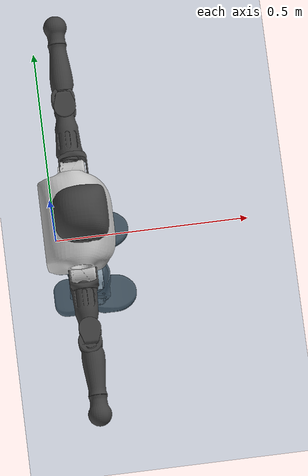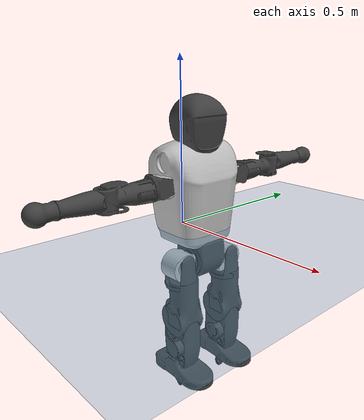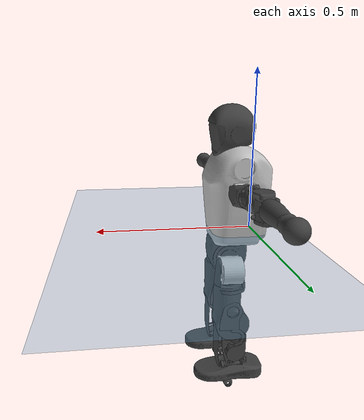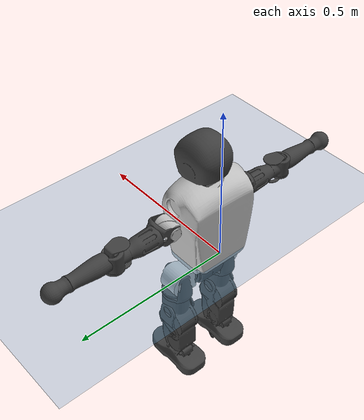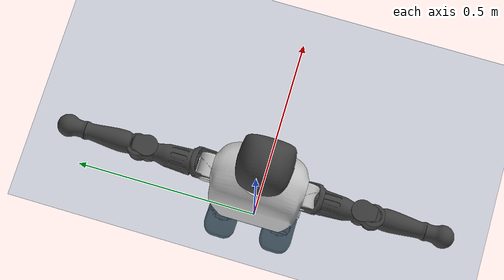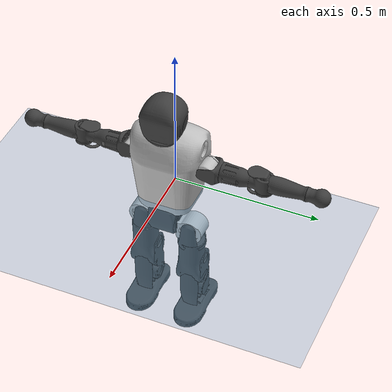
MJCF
<mujoco model="T1">
  <compiler angle="radian" assetdir="assets" balanceinertia="true" inertiafromgeom="false"/>

  <option timestep="0.005" density="1.2" viscosity="2e-05"/>

  <size nkey="1"/>

  <visual>
    <quality shadowsize="8192"/>
    <map shadowclip="0.5"/>
  </visual>

  <default>
    <default class="/">
      <joint armature="0.01" damping="0.01" frictionloss="0.1"/>
      <geom contype="0" conaffinity="0" group="1" solref="-1000 -80"/>
      <site size="0.01 0.005 0.005" group="5"/>
      <general forcelimited="true" biastype="affine" gainprm="25" biasprm="0 -25 -0.6"/>
      <default class="t1">
        <geom rgba="0.25 0.25 0.25 1"/>
        <default class="visual">
          <geom type="mesh" group="2"/>
        </default>
        <default class="collision">
          <geom group="3"/>
        </default>
        <default class="foot">
          <geom size="0.1115 0.05 0.015" type="box" condim="6" group="4" priority="1" solimp="0.015 1 0.015"/>
        </default>
        <default class="reward_collision_sphere">
          <geom group="5" rgba="1 0 0 1"/>
        </default>
      </default>
    </default>
  </default>

  <asset>
    <texture type="skybox" colorspace="auto" name="//unnamed_texture_0" builtin="gradient" rgb1="0.95 0.95 0.95" rgb2="0.95 0.95 0.95" width="100" height="600"/>
    <texture type="2d" colorspace="auto" name="texplane" builtin="checker" rgb1="0.345 0.575 0.748" rgb2="0.345 0.575 0.748" markrgb="1 1 1" width="512" height="512"/>
    <material name="MatPlane" class="/" texture="texplane" texuniform="true" texrepeat="2 2" specular="0.9"/>
    <mesh name="Trunk" class="/" file="Trunk.stl"/>
    <mesh name="H1" class="/" file="H1.stl"/>
    <mesh name="H2" class="/" file="H2.stl"/>
    <mesh name="AL1" class="/" file="AL1.stl"/>
    <mesh name="AL2" class="/" file="AL2.stl"/>
    <mesh name="AL3" class="/" file="AL3.stl"/>
    <mesh name="left_hand_link" class="/" file="left_hand_link.stl"/>
    <mesh name="AR1" class="/" file="AR1.stl"/>
    <mesh name="AR2" class="/" file="AR2.stl"/>
    <mesh name="AR3" class="/" file="AR3.stl"/>
    <mesh name="right_hand_link" class="/" file="right_hand_link.stl"/>
    <mesh name="Waist" class="/" file="Waist.stl"/>
    <mesh name="Hip_Pitch_Left" class="/" file="Hip_Pitch_Left.stl"/>
    <mesh name="Hip_Roll_Left" class="/" file="Hip_Roll_Left.stl"/>
    <mesh name="Hip_Yaw_Left" class="/" file="Hip_Yaw_Left.stl"/>
    <mesh name="Shank_Left" class="/" file="Shank_Left.stl"/>
    <mesh name="Ankle_Cross_Left" class="/" file="Ankle_Cross_Left.stl"/>
    <mesh name="left_foot_link" class="/" file="left_foot_link.stl"/>
    <mesh name="Hip_Pitch_Right" class="/" file="Hip_Pitch_Right.stl"/>
    <mesh name="Hip_Roll_Right" class="/" file="Hip_Roll_Right.stl"/>
    <mesh name="Hip_Yaw_Right" class="/" file="Hip_Yaw_Right.stl"/>
    <mesh name="Shank_Right" class="/" file="Shank_Right.stl"/>
    <mesh name="Ankle_Cross_Right" class="/" file="Ankle_Cross_Right.stl"/>
    <mesh name="right_foot_link" class="/" file="right_foot_link.stl"/>
  </asset>

  <worldbody>
    <geom name="floor" class="/" size="100 100 0.125" type="plane" group="0" material="MatPlane"/>
    <light name="toplight_shadow" class="/" pos="0 0 5" dir="0.0990148 0.0990148 -0.990148" type="directional" ambient="0.04 0.04 0.04" diffuse="0.55 0.55 0.55" specular="0.12 0.12 0.12"/>
    <light name="toplight_fill" class="/" pos="0 0 5" dir="0.0990148 0.0990148 -0.990148" type="directional" castshadow="false" ambient="0.04 0.04 0.04" diffuse="0.3 0.3 0.3" specular="0.08 0.08 0.08"/>
    <body name="trunk" childclass="t1" pos="0.000573317 0.00605124 -0.00442494" quat="0.999995 0.00279635 -0.00124426 -0.00104959">
      <inertial pos="0.0582217 -8.22913e-05 0.072008" quat="0.999953 -0.00096387 -0.00966075 0.000618405" mass="7.48388" diaginertia="0.127151 0.0259115 0.00696903"/>
      <joint name="//unnamed_joint_0" type="free" armature="0" damping="0" frictionloss="0"/>
      <geom name="//unnamed_geom_1" class="visual" rgba="0.76 0.76 0.76 1" mesh="Trunk"/>
      <geom name="//unnamed_geom_2" class="collision" size="0.064909 0.0865453 0.129818" pos="0.0656348 0 0.0825685" type="box"/>
      <geom name="//unnamed_geom_3" class="reward_collision_sphere" size="0.0995271" pos="0.0656348 0 0.0688071"/>
      <geom name="//unnamed_geom_4" class="reward_collision_sphere" size="0.0129818" pos="0.0656348 0.069222 0"/>
      <geom name="//unnamed_geom_5" class="reward_collision_sphere" size="0.0129818" pos="0.0656348 -0.069222 0"/>
      <geom name="//unnamed_geom_6" class="reward_collision_sphere" size="0.0129818" pos="0.0656348 0.0871382 0.123853"/>
      <geom name="//unnamed_geom_7" class="reward_collision_sphere" size="0.0129818" pos="0.0656348 -0.0871382 0.123853"/>
      <site name="imu" pos="-0.0221301 -0.00340681 0.00427728" size="0.00865453"/>
      <camera name="track" pos="0 -1.62875 0" quat="0.707107 0.707107 0 0" mode="trackcom"/>
      <camera name="ego_camera" pos="0.133457 0 0.28899" quat="-0.5 -0.5 0.5 0.5"/>
      <body name="H1" pos="0.0618193 -0.00659535 0.171333" quat="1 -7.93439e-05 0.000224551 -6.46306e-05">
        <inertial pos="0.00431705 -0.00219536 0.0349821" quat="0.771894 -0.056271 0.00113229 0.633256" mass="0.289512" diaginertia="0.000398802 7.86219e-05 2.35872e-05"/>
        <joint name="AAHead_yaw" pos="0 0 0" axis="-0.00436408 -0.00534027 0.999976" range="-1.54892 1.67038" armature="0.0110253" damping="0" frictionloss="0.047203"/>
        <geom name="//unnamed_geom_8" class="visual" mesh="H1"/>
        <body name="H2" pos="-0.0032513 -0.000210986 0.0393226" quat="1 4.92572e-05 -2.30142e-05 4.15746e-05">
          <inertial pos="0.00882766 -0.00184459 0.0689594" quat="0.988587 0.104807 -0.0718712 -0.080901" mass="0.427767" diaginertia="0.00349531 0.000734343 0.000259548"/>
          <joint name="Head_pitch" pos="0 0 0" axis="0.000942335 -0.999951 -0.0098637" range="-1.26942 0.394448" armature="0.0121739" damping="0" frictionloss="0.0829886"/>
          <geom name="//unnamed_geom_9" class="visual" mesh="H2"/>
          <geom name="//unnamed_geom_10" class="collision" size="0.0692362" pos="0.0109391 0 0.0756878"/>
          <geom name="//unnamed_geom_11" class="reward_collision_sphere" size="0.0778908" pos="0.0218783 0 0.0688071"/>
        </body>
      </body>
      <body name="AL1" pos="0.0635712 0.0894069 0.149603" quat="1 -3.7516e-05 0.000454292 -4.8043e-05">
        <inertial pos="0.00116653 0.0368147 5.46353e-05" quat="0.519384 0.512298 -0.50633 0.459806" mass="0.329467" diaginertia="0.00213123 0.000443268 4.098e-05"/>
        <joint name="Left_Shoulder_Pitch" pos="0 0 0" axis="-0.0113701 0.999924 -0.00485876" range="-3.27946 1.20332" armature="0.00795398" damping="0.00465388" frictionloss="0.0783923"/>
        <geom name="//unnamed_geom_12" class="visual" rgba="0.76 0.76 0.76 1" mesh="AL1"/>
        <body name="AL2" pos="0.00358826 0.0403355 0.00149415" quat="1 0.000498841 -0.000265025 0.000218593">
          <inertial pos="0.00707941 0.0332227 -0.00135113" quat="0.488002 0.513892 -0.483316 0.513979" mass="0.105283" diaginertia="0.000618015 0.000124882 2.63905e-05"/>
          <joint name="Left_Shoulder_Roll" pos="0 0 0" axis="-0.999964 0.000898448 0.00842405" range="-1.55316 1.68331" armature="0.00837094" damping="0" frictionloss="0.0775888"/>
          <geom name="//unnamed_geom_13" class="visual" mesh="AL2"/>
          <body name="AL3" pos="-0.00541029 0.0516772 -0.00202289" quat="0.999997 0.000251758 0.00227926 -0.000221308">
            <inertial pos="0.00770316 0.0716868 0.000163696" quat="0.70447 0.709682 0.00801829 -0.00293406" mass="0.632419" diaginertia="0.0198821 0.00503304 9.91711e-05"/>
            <joint name="Left_Elbow_Pitch" pos="0 0 0" axis="0.00248496 -0.999958 0.00879016" range="-2.29489 2.27872" armature="0.00983536" damping="0" frictionloss="0.0793791"/>
            <geom name="//unnamed_geom_14" class="visual" mesh="AL3"/>
            <geom name="//unnamed_geom_15" class="collision" size="0.0259636 0.064909" pos="0 0.0407188 0" quat="0.707105 0.707108 0 0" type="cylinder"/>
            <geom name="//unnamed_geom_16" class="reward_collision_sphere" size="0.0311563"/>
            <body name="left_hand_link" pos="0.00214795 0.121057 0.00888982" quat="0.999994 -0.00158208 0.00236815 0.00183501">
              <inertial pos="-0.0014502 0.0928634 -0.00325976" quat="0.705989 0.70814 -0.00947193 -0.00526798" mass="0.227831" diaginertia="0.0129574 0.00307783 3.89014e-05"/>
              <joint name="Left_Elbow_Yaw" pos="0 0 0" axis="0.00830875 0.00688676 0.999942" range="-2.4813 0.00835611" armature="0.00773897" damping="0.0177305" frictionloss="0.0822856"/>
              <geom name="//unnamed_geom_17" class="visual" mesh="left_hand_link"/>
              <geom name="//unnamed_geom_18" class="collision" size="0.0259636 0.0757271" pos="0 0.105869 0" quat="0.707105 0.707108 0 0" type="cylinder"/>
              <geom name="//unnamed_geom_19" class="reward_collision_sphere" size="0.0432727"/>
              <geom name="//unnamed_geom_20" class="reward_collision_sphere" size="0.0302909" pos="0 0.0895814 0"/>
              <geom name="//unnamed_geom_21" class="reward_collision_sphere" size="0.0302909" pos="0 0.175091 0"/>
            </body>
          </body>
        </body>
      </body>
      <body name="AR1" pos="0.0605487 -0.0785369 0.153709" quat="0.999999 -0.000524932 0.000322356 -0.000975165">
        <inertial pos="0.00115351 -0.0307952 -0.00764645" quat="0.511353 0.49506 -0.503973 0.489331" mass="0.353368" diaginertia="0.00219621 0.000521779 4.66698e-05"/>
        <joint name="Right_Shoulder_Pitch" pos="0 0 0" axis="0.0329068 -0.999355 -0.0143941" range="-1.32261 3.26159" armature="0.00860899" damping="0.00919882" frictionloss="0.0654108"/>
        <geom name="//unnamed_geom_22" class="visual" rgba="0.76 0.76 0.76 1" mesh="AR1"/>
        <body name="AR2" pos="-0.00108394 -0.0359168 0.00290706" quat="0.999999 -0.000423921 0.00014417 0.00124427">
          <inertial pos="0.00685547 -0.0297496 0.00296139" quat="0.512188 0.491841 -0.515227 0.479893" mass="0.0936021" diaginertia="0.000558876 0.000106744 2.68523e-05"/>
          <joint name="Right_Shoulder_Roll" pos="0 0 0" axis="-0.999969 0.00768355 0.00175926" range="-1.71526 1.53234" armature="0.0114927" damping="0.00341047" frictionloss="0.0780761"/>
          <geom name="//unnamed_geom_23" class="visual" mesh="AR2"/>
          <body name="AR3" pos="-0.00195614 -0.0431463 -0.00673672" quat="0.999996 0.00221524 -0.00106367 -0.000982883">
            <inertial pos="-0.00894169 -0.0672507 -0.00631098" quat="0.708778 0.705427 -0.00262076 -8.66102e-05" mass="0.694776" diaginertia="0.02307 0.00476529 0.000100762"/>
            <joint name="Right_Elbow_Pitch" pos="0 0 0" axis="0.000240804 1 -0.000192473" stiffness="0.00416551" range="-2.30132 2.24337" armature="0.00858065" damping="0" frictionloss="0.0472842"/>
            <geom name="//unnamed_geom_24" class="visual" mesh="AR3"/>
            <geom name="//unnamed_geom_25" class="collision" size="0.0259636 0.064909" pos="0 -0.0407188 0" quat="0.707105 0.707108 0 0" type="cylinder"/>
            <geom name="//unnamed_geom_26" class="reward_collision_sphere" size="0.0311563"/>
            <body name="right_hand_link" pos="0.00296261 -0.115466 0.00247863" quat="1 -0.000305034 0.000105327 -2.77569e-05">
              <inertial pos="-0.000352259 -0.0884112 -0.000502924" quat="0.707732 0.706438 0.0068996 0.00370034" mass="0.202924" diaginertia="0.0115291 0.00262785 3.02958e-05"/>
              <joint name="Right_Elbow_Yaw" pos="0 0 0" axis="0.0230827 0.0350521 0.999119" range="-0.00948529 2.43149" armature="0.00922942" damping="0" frictionloss="0.0763036"/>
              <geom name="//unnamed_geom_27" class="visual" mesh="right_hand_link"/>
              <geom name="//unnamed_geom_28" class="collision" size="0.0259636 0.0757271" pos="0 -0.105869 0" quat="0.707105 0.707108 0 0" type="cylinder"/>
              <geom name="//unnamed_geom_29" class="reward_collision_sphere" size="0.0432727"/>
              <geom name="//unnamed_geom_30" class="reward_collision_sphere" size="0.0302909" pos="0 -0.0895814 0"/>
              <geom name="//unnamed_geom_31" class="reward_collision_sphere" size="0.0302909" pos="0 -0.175091 0"/>
            </body>
          </body>
        </body>
      </body>
      <body name="Waist" pos="0.0773869 0.00063588 -0.0833492" quat="0.999992 0.00155616 0.00128506 -0.003502">
        <inertial pos="0.00983603 -0.00444704 0.0091343" quat="0.976535 0.00746747 -0.214379 0.0191278" mass="1.80169" diaginertia="0.00844431 0.00187428 0.000716243"/>
        <joint name="Waist" pos="0 0 0" axis="-0.000720103 -0.0147882 0.99989" range="-1.5789 1.59283" armature="0.00858653" damping="0.014027" frictionloss="0.0893637"/>
        <geom name="//unnamed_geom_32" class="visual" mesh="Waist"/>
        <body name="Hip_Pitch_Left" pos="0.0039721 0.0907663 -0.00562525" quat="1 -0.000336863 -0.000217978 0.000150968">
          <inertial pos="-0.00632619 -0.00370439 -0.0134544" quat="0.9698 0.241869 0.0173652 0.0261876" mass="0.657358" diaginertia="0.00296407 0.000474578 0.000185544"/>
          <joint name="Left_Hip_Pitch" pos="0 0 0" axis="-0.0163262 0.99968 -0.0193126" range="-1.81694 1.53941" armature="0.00763928" damping="0.00440568" frictionloss="0.0951948"/>
          <geom name="//unnamed_geom_33" class="visual" rgba="0.76 0.76 0.76 1" mesh="Hip_Pitch_Left"/>
          <body name="Hip_Roll_Left" pos="0.00576803 0.00101373 -0.00449165" quat="1 6.42366e-05 -9.09106e-05 9.92606e-05">
            <inertial pos="0.00130059 0.00840783 -0.036211" quat="0.707808 -0.00500048 -0.00478705 0.706371" mass="0.261277" diaginertia="0.00310291 0.000628846 7.42898e-05"/>
            <joint name="Left_Hip_Roll" pos="0 0 0" axis="-0.999979 0.00279106 0.00589935" stiffness="0.00244891" range="-1.59901 0.161759" armature="0.00914055" damping="0.0487767" frictionloss="0.066022"/>
            <geom name="//unnamed_geom_34" class="visual" mesh="Hip_Roll_Left"/>
            <geom name="//unnamed_geom_35" class="reward_collision_sphere" size="0.0475999"/>
            <body name="Hip_Yaw_Left" pos="0.00358657 0.0012877 -0.0565228" quat="0.999999 0.00058283 0.00100274 -0.000586158">
              <inertial pos="-0.00633291 6.38344e-06 -0.0573524" quat="0.696708 -0.0344632 -0.0311332 0.71585" mass="1.44848" diaginertia="0.0427306 0.010123 0.000441833"/>
              <joint name="Left_Hip_Yaw" pos="0 0 0" axis="0.00652977 0.00645112 -0.999958" stiffness="0.0306437" range="-0.836271 0.967637" armature="0.00844037" damping="0" frictionloss="0.0881334"/>
              <geom name="//unnamed_geom_36" class="visual" mesh="Hip_Yaw_Left"/>
              <geom name="//unnamed_geom_37" class="collision" size="0.0432727 0.0692362" type="cylinder"/>
              <body name="Shank_Left" pos="-0.0102329 0.00181695 -0.0816279" quat="1 -0.000510245 0.000365806 2.89868e-05">
                <inertial pos="-0.00165426 0.00280364 -0.0846011" quat="0.997305 0.00874202 -0.0151255 0.0712556" mass="1.12205" diaginertia="0.052776 0.0138833 0.000310054"/>
                <joint name="Left_Knee_Pitch" pos="0 0 0" axis="-0.00287666 0.999983 0.00513776" range="0.00544222 2.40424" armature="0.00681393" damping="0.0244964" frictionloss="0.0777969"/>
                <geom name="//unnamed_geom_38" class="visual" mesh="Shank_Left"/>
                <geom name="//unnamed_geom_39" class="collision" size="0.0432727 0.064909" pos="0 0 -0.0825685" type="cylinder"/>
                <geom name="//unnamed_geom_40" class="reward_collision_sphere" size="0.0562545"/>
                <body name="Ankle_Cross_Left" pos="-0.00672783 0.000595926 -0.201678" quat="0.999999 -0.00090318 0.000239142 0.000586426">
                  <inertial pos="0.00514992 0.00212981 -0.00790291" quat="0.437898 0.557563 0.547702 0.444288" mass="0.0488857" diaginertia="4.72174e-05 9.29334e-06 1.74783e-06"/>
                  <joint name="Left_Ankle_Pitch" pos="0 0 0" axis="-0.00162321 0.999995 0.00268101" stiffness="0.0240764" range="-0.860411 0.346446" armature="0.00489325" damping="0" frictionloss="0.0951276"/>
                  <geom name="//unnamed_geom_41" class="visual" mesh="Ankle_Cross_Left"/>
                  <body name="left_foot_link" pos="-0.000454394 0.00380989 -0.011808" quat="0.999989 -0.00216096 0.0031278 -0.00258951">
                    <inertial pos="0.00443421 0.00234558 -0.00836093" quat="-0.00995968 0.613168 0.0316553 0.789256" mass="0.407001" diaginertia="0.00387764 0.000827434 0.000304333"/>
                    <joint name="Left_Ankle_Roll" pos="0 0 0" axis="-0.999042 -0.030858 0.0310391" range="-0.441926 0.372716" armature="0.00867121" damping="0.0302387" frictionloss="0.0814531"/>
                    <geom name="//unnamed_geom_42" class="visual" mesh="left_foot_link"/>
                    <geom name="left_foot" class="foot" size="0.0901229 0.0563671 0.011315" pos="0.0109391 0 -0.0103211"/>
                    <geom name="//unnamed_geom_44" class="reward_collision_sphere" size="0.0450036" pos="0.0109391 0 -0.0103211"/>
                    <geom name="//unnamed_geom_45" class="reward_collision_sphere" size="0.0259636" pos="0.103922 -0.0187306 -0.0103211"/>
                    <geom name="//unnamed_geom_46" class="reward_collision_sphere" size="0.0259636" pos="-0.0765739 -0.0187306 -0.0103211"/>
                    <site name="left_foot" class="foot" pos="0.0109391 0 -0.0103211" size="0.00865453"/>
                  </body>
                </body>
              </body>
            </body>
          </body>
        </body>
        <body name="Hip_Pitch_Right" pos="-0.00223455 -0.0836992 0.00837123" quat="1 -0.00027191 0.000168123 0.000651176">
          <inertial pos="0.00832994 0.0126011 -0.0122564" quat="0.974144 -0.225427 0.0139969 -0.00558562" mass="0.664012" diaginertia="0.00268911 0.000492106 0.00019685"/>
          <joint name="Right_Hip_Pitch" pos="0 0 0" axis="0.000423305 -0.999999 -0.00162455" range="-1.59046 1.86529" armature="0.00883714" damping="0.0431669" frictionloss="0.0836189"/>
          <geom name="//unnamed_geom_47" class="visual" rgba="0.76 0.76 0.76 1" mesh="Hip_Pitch_Right"/>
          <body name="Hip_Roll_Right" pos="0.00289991 0.00352195 -0.00549178" quat="0.999999 0.000768956 -0.000620594 0.000930766">
            <inertial pos="0.00526792 -0.000317376 -0.0408185" quat="0.719298 -0.00721346 -0.0296355 0.694031" mass="0.241033" diaginertia="0.00240556 0.000526891 7.56389e-05"/>
            <joint name="Right_Hip_Roll" pos="0 0 0" axis="-0.999999 -0.000160203 0.00116989" range="-0.237119 1.59762" armature="0.00807445" damping="0.0107835" frictionloss="0.0700587"/>
            <geom name="//unnamed_geom_48" class="visual" mesh="Hip_Roll_Right"/>
            <geom name="//unnamed_geom_49" class="reward_collision_sphere" size="0.0475999"/>
            <body name="Hip_Yaw_Right" pos="0.00808029 0.00219265 -0.0569638" quat="0.999999 0.000233743 0.00113841 0.00033787">
              <inertial pos="-0.00887966 -0.000473673 -0.0643368" quat="0.718688 -0.0260145 -0.0317633 0.694119" mass="1.33422" diaginertia="0.0352292 0.00873173 0.000346898"/>
              <joint name="Right_Hip_Yaw" pos="0 0 0" axis="0.00376153 0.00264786 -0.999989" range="-1.03712 0.972351" armature="0.00942658" damping="0" frictionloss="0.0866177"/>
              <geom name="//unnamed_geom_50" class="visual" mesh="Hip_Yaw_Right"/>
              <geom name="//unnamed_geom_51" class="collision" size="0.0432727 0.0692362" type="cylinder"/>
              <body name="Shank_Right" pos="-0.00959418 0.00226788 -0.0885216" quat="1 3.19292e-05 1.27285e-05 -5.16368e-05">
                <inertial pos="-0.00636772 0.00559247 -0.084745" quat="0.999299 0.0174324 -0.0277759 -0.0180553" mass="1.04664" diaginertia="0.0539905 0.0122063 0.000320324"/>
                <joint name="Right_Knee_Pitch" pos="0 0 0" axis="-0.011522 -0.999931 -0.0023811" stiffness="0.00342744" range="-2.20123 0.0182792" armature="0.00833535" damping="0.00462755" frictionloss="0.0780091"/>
                <geom name="//unnamed_geom_52" class="visual" mesh="Shank_Right"/>
                <geom name="//unnamed_geom_53" class="collision" size="0.0432727 0.064909" pos="0 0 -0.0825685" type="cylinder"/>
                <geom name="//unnamed_geom_54" class="reward_collision_sphere" size="0.0562545"/>
                <body name="Ankle_Cross_Right" pos="0.00342803 0.000857238 -0.192727" quat="1 5.03064e-05 -0.000105013 2.82474e-07">
                  <inertial pos="-0.00702829 -0.00171649 -0.00520903" quat="0.442978 0.551509 0.550688 0.443115" mass="0.0502276" diaginertia="4.25769e-05 9.7932e-06 1.63992e-06"/>
                  <joint name="Right_Ankle_Pitch" pos="0 0 0" axis="0.0260104 -0.999482 0.0189731" stiffness="0.0233945" range="-0.41156 0.961539" armature="0.008862" damping="0" frictionloss="0.0875502"/>
                  <geom name="//unnamed_geom_55" class="visual" mesh="Ankle_Cross_Right"/>
                  <body name="right_foot_link" pos="-0.00371353 -0.0059538 -0.0185573" quat="1 0.000292282 -0.000142092 -8.39174e-05">
                    <inertial pos="-0.000120424 -0.00584946 0.0023846" quat="-0.0251332 0.628191 -0.0124782 0.777553" mass="0.503267" diaginertia="0.00483762 0.000955293 0.000413874"/>
                    <joint name="Right_Ankle_Roll" pos="0 0 0" axis="-0.999997 -0.00197462 -0.0012456" stiffness="0.00219082" range="-0.335034 0.290902" armature="0.0126519" damping="0.0476816" frictionloss="0.068913"/>
                    <geom name="//unnamed_geom_56" class="visual" mesh="right_foot_link"/>
                    <geom name="right_foot" class="foot" size="0.0818784 0.0528912 0.0101162" pos="0.0109391 0 -0.0103211"/>
                    <geom name="//unnamed_geom_58" class="reward_collision_sphere" size="0.0346181"/>
                    <geom name="//unnamed_geom_59" class="reward_collision_sphere" size="0.0259636" pos="0.0109391 0 -0.0103211"/>
                    <geom name="//unnamed_geom_60" class="reward_collision_sphere" size="0.0259636" pos="0.103922 0.0187306 -0.0103211"/>
                    <geom name="//unnamed_geom_61" class="reward_collision_sphere" size="0.0259636" pos="-0.0765739 0.0187306 -0.0103211"/>
                    <site name="right_foot" class="foot" pos="0.0109391 0 -0.0103211" size="0.00865453"/>
                  </body>
                </body>
              </body>
            </body>
          </body>
        </body>
      </body>
    </body>
  </worldbody>

  <contact>
    <pair class="/" geom1="floor" geom2="left_foot" name="//unnamed_contact_0"/>
    <pair class="/" geom1="floor" geom2="right_foot" name="//unnamed_contact_1"/>
  </contact>

  <actuator>
    <general name="AAHead_yaw" class="/" joint="AAHead_yaw" forcerange="-5.99778 5.99778" gainprm="22.3707" biasprm="0 -22.3707 -0.491959"/>
    <general name="Head_pitch" class="/" joint="Head_pitch" forcerange="-6.43271 6.43271" gainprm="22.3707" biasprm="0 -22.3707 -0.491959"/>
    <general name="Left_Shoulder_Pitch" class="/" joint="Left_Shoulder_Pitch" forcerange="-20.8403 20.8403" gainprm="22.3707" biasprm="0 -22.3707 -0.491959"/>
    <general name="Left_Shoulder_Roll" class="/" joint="Left_Shoulder_Roll" forcerange="-19.2892 19.2892" gainprm="22.3707" biasprm="0 -22.3707 -0.491959"/>
    <general name="Left_Elbow_Pitch" class="/" joint="Left_Elbow_Pitch" forcerange="-13.5466 13.5466" gainprm="22.3707" biasprm="0 -22.3707 -0.491959"/>
    <general name="Left_Elbow_Yaw" class="/" joint="Left_Elbow_Yaw" forcerange="-15.2394 15.2394" gainprm="22.3707" biasprm="0 -22.3707 -0.491959"/>
    <general name="Right_Shoulder_Pitch" class="/" joint="Right_Shoulder_Pitch" forcerange="-14.8507 14.8507" gainprm="22.3707" biasprm="0 -22.3707 -0.491959"/>
    <general name="Right_Shoulder_Roll" class="/" joint="Right_Shoulder_Roll" forcerange="-13.1823 13.1823" gainprm="22.3707" biasprm="0 -22.3707 -0.491959"/>
    <general name="Right_Elbow_Pitch" class="/" joint="Right_Elbow_Pitch" forcerange="-16.6141 16.6141" gainprm="22.3707" biasprm="0 -22.3707 -0.491959"/>
    <general name="Right_Elbow_Yaw" class="/" joint="Right_Elbow_Yaw" forcerange="-14.9164 14.9164" gainprm="22.3707" biasprm="0 -22.3707 -0.491959"/>
    <general name="Waist" class="/" joint="Waist" forcerange="-31.3758 31.3758" gainprm="22.3707" biasprm="0 -22.3707 -0.491959"/>
    <general name="Left_Hip_Pitch" class="/" joint="Left_Hip_Pitch" forcerange="-42.0937 42.0937" gainprm="22.3707" biasprm="0 -22.3707 -0.491959"/>
    <general name="Left_Hip_Roll" class="/" joint="Left_Hip_Roll" forcerange="-25.5683 25.5683" gainprm="22.3707" biasprm="0 -22.3707 -0.491959"/>
    <general name="Left_Hip_Yaw" class="/" joint="Left_Hip_Yaw" forcerange="-28.4212 28.4212" gainprm="22.3707" biasprm="0 -22.3707 -0.491959"/>
    <general name="Left_Knee_Pitch" class="/" joint="Left_Knee_Pitch" forcerange="-49.1795 49.1795" gainprm="22.3707" biasprm="0 -22.3707 -0.491959"/>
    <general name="Left_Ankle_Pitch" class="/" joint="Left_Ankle_Pitch" forcerange="-17.4927 17.4927" gainprm="22.3707" biasprm="0 -22.3707 -0.491959"/>
    <general name="Left_Ankle_Roll" class="/" joint="Left_Ankle_Roll" forcerange="-13.0473 13.0473" gainprm="22.3707" biasprm="0 -22.3707 -0.491959"/>
    <general name="Right_Hip_Pitch" class="/" joint="Right_Hip_Pitch" forcerange="-29.4658 29.4658" gainprm="22.3707" biasprm="0 -22.3707 -0.491959"/>
    <general name="Right_Hip_Roll" class="/" joint="Right_Hip_Roll" forcerange="-17.5714 17.5714" gainprm="22.3707" biasprm="0 -22.3707 -0.491959"/>
    <general name="Right_Hip_Yaw" class="/" joint="Right_Hip_Yaw" forcerange="-25.4523 25.4523" gainprm="22.3707" biasprm="0 -22.3707 -0.491959"/>
    <general name="Right_Knee_Pitch" class="/" joint="Right_Knee_Pitch" forcerange="-47.8521 47.8521" gainprm="22.3707" biasprm="0 -22.3707 -0.491959"/>
    <general name="Right_Ankle_Pitch" class="/" joint="Right_Ankle_Pitch" forcerange="-22.7486 22.7486" gainprm="22.3707" biasprm="0 -22.3707 -0.491959"/>
    <general name="Right_Ankle_Roll" class="/" joint="Right_Ankle_Roll" forcerange="-10.4591 10.4591" gainprm="22.3707" biasprm="0 -22.3707 -0.491959"/>
  </actuator>

  <sensor>
    <gyro site="imu" name="imu_angular_velocity"/>
    <velocimeter site="imu" name="imu_linear_velocity"/>
    <framelinvel objtype="site" objname="left_foot" name="left_foot_global_linear_velocity"/>
    <framelinvel objtype="site" objname="right_foot" name="right_foot_global_linear_velocity"/>
  </sensor>

  <keyframe>
    <key name="home" qpos="0 0 0.6385 1 0 0 0 0 0 0 1.4 0 -0.4 0 -1.4 0 0.4 0 -0.4 0 0 0.8 -0.4 0 0.4 0 0 -0.8 0.4 0"/>
  </keyframe>
</mujoco>
